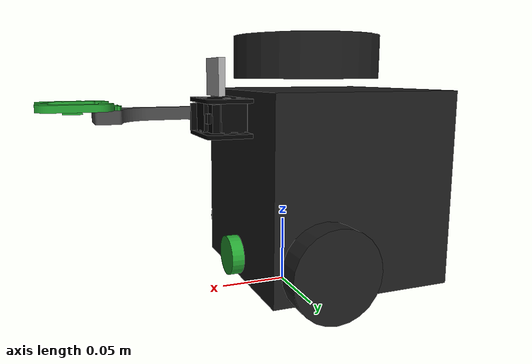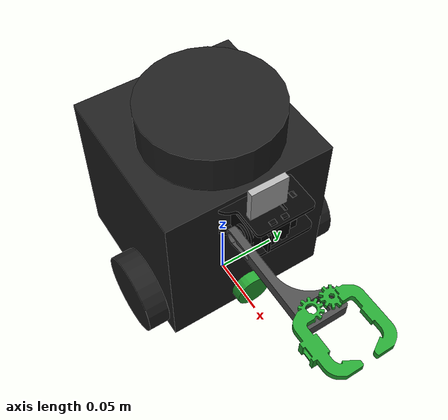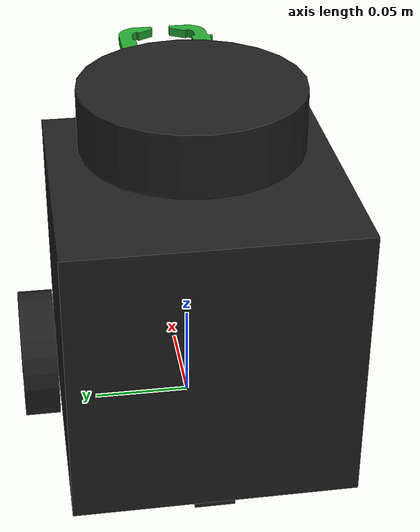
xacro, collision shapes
<?xml version="1.0" ?>
<robot name="mybot" xmlns:xacro="http://ros.org/wiki/xacro">
  <xacro:include filename="$(find mybot_description)/urdf/common_properties.xacro"/>
  <xacro:include filename="$(find mybot_description)/urdf/mybot.gazebo.xacro"/>

  <link name="base_footprint"/>

  <joint name="base_joint" type="fixed">
    <parent link="base_footprint"/>
    <child link="base_link"/>
    <origin xyz="0.0 0.0 0.010" rpy="0 0 0"/>
  </joint>

  <link name="base_link">
    <visual>
      <origin xyz="-0.032 0 0.0" rpy="0 0 0"/>
      <geometry>
        <mesh filename="package://mybot_description/meshes/bases/burger_base.stl" scale="0.001 0.001 0.001"/>
      </geometry>
      <material name="light_black"/>
    </visual>

    <collision>
      <origin xyz="-0.032 0 0.070" rpy="0 0 0"/>
      <geometry>
        <box size="0.140 0.140 0.143"/>
      </geometry>
    </collision>

    <inertial>
      <origin xyz="0 0 0" rpy="0 0 0"/>
      <mass value="8.2573504e-01"/>
      <inertia ixx="2.2124416e-03" ixy="-1.2294101e-05" ixz="3.4938785e-05"
               iyy="2.1193702e-03" iyz="-5.0120904e-06"
               izz="2.0064271e-03" />
    </inertial>
  </link>

  <joint name="wheel_left_joint" type="continuous">
    <parent link="base_link"/>
    <child link="wheel_left_link"/>
    <origin xyz="0.0 0.08 0.023" rpy="-1.57 0 0"/>
    <axis xyz="0 0 1"/>
  </joint>

  <link name="wheel_left_link">
    <visual>
      <origin xyz="0 0 0" rpy="1.57 0 0"/>
      <geometry>
        <mesh filename="package://mybot_description/meshes/wheels/left_tire.stl" scale="0.001 0.001 0.001"/>
      </geometry>
      <material name="dark"/>
    </visual>

    <collision>
      <origin xyz="0 0 0" rpy="0 0 0"/>
      <geometry>
        <cylinder length="0.018" radius="0.033"/>
      </geometry>
    </collision>

    <inertial>
      <origin xyz="0 0 0" />
      <mass value="2.8498940e-02" />
      <inertia ixx="1.1175580e-05" ixy="-4.2369783e-11" ixz="-5.9381719e-09"
               iyy="1.1192413e-05" iyz="-1.4400107e-11"
               izz="2.0712558e-05" />
      </inertial>
  </link>

  <joint name="wheel_right_joint" type="continuous">
    <parent link="base_link"/>
    <child link="wheel_right_link"/>
    <origin xyz="0.0 -0.080 0.023" rpy="-1.57 0 0"/>
    <axis xyz="0 0 1"/>
  </joint>

  <link name="wheel_right_link">
    <visual>
      <origin xyz="0 0 0" rpy="1.57 0 0"/>
      <geometry>
        <mesh filename="package://mybot_description/meshes/wheels/right_tire.stl" scale="0.001 0.001 0.001"/>
      </geometry>
      <material name="dark"/>
    </visual>

    <collision>
      <origin xyz="0 0 0" rpy="0 0 0"/>
      <geometry>
        <cylinder length="0.018" radius="0.033"/>
      </geometry>
    </collision>

    <inertial>
      <origin xyz="0 0 0" />
      <mass value="2.8498940e-02" />
      <inertia ixx="1.1175580e-05" ixy="-4.2369783e-11" ixz="-5.9381719e-09"
               iyy="1.1192413e-05" iyz="-1.4400107e-11"
               izz="2.0712558e-05" />
      </inertial>
  </link>

  <joint name="caster_back_joint" type="fixed">
    <parent link="base_link"/>
    <child link="caster_back_link"/>
    <origin xyz="-0.081 0 -0.004" rpy="-1.57 0 0"/>
  </joint>

  <link name="caster_back_link">
    <collision>
      <origin xyz="0 0.001 0" rpy="0 0 0"/>
      <geometry>
        <box size="0.030 0.009 0.020"/>
      </geometry>
    </collision>

    <inertial>
      <origin xyz="0 0 0" />
      <mass value="0.005" />
      <inertia ixx="0.001" ixy="0.0" ixz="0.0"
               iyy="0.001" iyz="0.0"
               izz="0.001" />
    </inertial>
  </link>

  <joint name="imu_joint" type="fixed">
    <parent link="base_link"/>
    <child link="imu_link"/>
    <origin xyz="-0.032 0 0.068" rpy="0 0 0"/>
  </joint>

  <link name="imu_link"/>

  <joint name="scan_joint" type="fixed">
    <parent link="base_link"/>
    <child link="base_scan"/>
    <origin xyz="-0.032 0 0.172" rpy="0 0 0"/>
  </joint>

  <link name="base_scan">
    <visual>
      <origin xyz="0 0 0.0" rpy="0 0 0"/>
      <geometry>
        <mesh filename="package://mybot_description/meshes/sensors/lds.stl" scale="0.001 0.001 0.001"/>
      </geometry>
      <material name="dark"/>
    </visual>

    <collision>
      <origin xyz="0.015 0 -0.0065" rpy="0 0 0"/>
      <geometry>
        <cylinder length="0.0315" radius="0.055"/>
      </geometry>
    </collision>

    <inertial>
      <mass value="0.114" />
      <origin xyz="0 0 0" />
      <inertia ixx="0.001" ixy="0.0" ixz="0.0"
               iyy="0.001" iyz="0.0"
               izz="0.001" />
    </inertial>
  </link>
<!-- camera turtlebot3 insper-->
  <joint name="camera_joint" type="fixed">
    <origin xyz="0.05 -0.011 0.138" rpy="0 0.0 0"/>
    <parent link="base_link"/>
    <child link="camera_link"/>
  </joint>

  <link name="camera_link">
    <visual>
        <origin xyz="0.005 0.011 0.013" rpy="0 0 0"/>
        <geometry>
            <box size="0.005 0.030 0.027"/>
        </geometry>
    </visual>
    <collision>
      <origin xyz="0.005 0.011 0.013" rpy="0 0 0"/>
      <geometry>
        <box size="0.005 0.030 0.027"/>
      </geometry>
    </collision>
  </link>

  <joint name="camera_rgb_joint" type="fixed">
    <origin xyz="0.003 0.011 0.009" rpy="0 0 0"/>
    <parent link="camera_link"/>
    <child link="camera_rgb_frame"/>
  </joint>
  <link name="camera_rgb_frame"/>

  <joint name="camera_rgb_optical_joint" type="fixed">
    <origin xyz="0 0 0" rpy="-1.57 0 -1.57"/>
    <parent link="camera_rgb_frame"/>
    <child link="camera_rgb_optical_frame"/>
  </joint>
  <link name="camera_rgb_optical_frame"/>

<!-- bumper turtlebot3 insper-->
  <link name="bumper_link">
    <inertial>
        <origin xyz="0.0 0.0 0.0" rpy="0 1.0 0"/>
        <mass value="0.0000000001"/>
        <inertia ixx="0.00000001" ixy="0.00000001" ixz="0.00000001" iyy="0.00000001" iyz="0.00000001" izz="0.00000001"/>
    </inertial>
    <visual>
        <origin xyz="0.0 0.0 0.0" rpy="0.0 1.57 0"/>
        <geometry>
            <cylinder radius="0.015" length="0.015"/>
        </geometry>
      <material name="green"/>
    </visual>
    <collision name="base_collision">
        <origin xyz="0.0 0.0 0.0" rpy="0.0 1.57 0.0"/>
        <geometry>
            <cylinder radius="0.015" length="0.015"/>
        </geometry>
    </collision>
  </link>
  <joint name="bumper_joint" type="fixed">
      <origin xyz="0.04 0.0 0.015" rpy="0.0 0.0 0.0"/>
      <parent link="base_link"/>
      <child link="bumper_link"/>
  </joint>

<!-- garra turtlebot3 insper-->

  <joint name="base_joint_garra" type="fixed">
    <parent link="base_link"/>
    <child link="base_link_garra"/>
    <origin xyz="0.044 0.005 0.108" rpy="0 0 -1.57"/>
  </joint>

  <link name="base_link_garra">
    <inertial>
      <origin rpy="0 0 0" xyz="0.0005 -0.0001 0.002"/>
      <mass value="0.0001"/>
      <inertia ixx="1.9768356736455373e-06" ixy="3.3842609487814834e-07" ixz="3.3087224502121107e-23" iyy="2.1568932661454165e-06" iyz="-2.274746684520826e-23" izz="4.120108098287789e-06"/>
    </inertial>
    <visual>
      <origin rpy="0 0 0" xyz="0 0 0"/>
      <geometry>
        <mesh filename="package://mybot_description/meshes/garra/base_link_garra.dae" scale="0.001 0.001 0.001"/>
      </geometry>
      <gazebo reference="base_link_garra">
    </gazebo>
    </visual>
    <collision>
      <origin rpy="0 0 0" xyz="0 0 0"/>
      <geometry>
        <mesh filename="package://mybot_description/meshes/garra/base_link_garra.dae" scale="0.001 0.001 0.001"/>
      </geometry>
    </collision>
  </link>

  <link name="lat31">
    <inertial>
      <origin rpy="0 0 0" xyz="-0.005014384312211391 -0.0015000010654330244 0.013948367968184407"/>
      <mass value="0.0001"/>
      <inertia ixx="8.662089264671677e-08" ixy="0.0" ixz="1.2947458053521905e-11" iyy="1.3378883884262552e-07" iyz="0.0" izz="4.9622899604909504e-08"/>
    </inertial>
    <visual>
      <origin rpy="0 0 0" xyz="-0.007563 0.0205 -0.001"/>
      <geometry>
        <mesh filename="package://mybot_description/meshes/garra/lat31.dae" scale="0.001 0.001 0.001"/>
      </geometry>
      <gazebo reference="lat31">
    </gazebo>
    </visual>
    <collision>
      <origin rpy="0 0 0" xyz="-0.007563 0.0205 -0.001"/>
      <geometry>
        <mesh filename="package://mybot_description/meshes/garra/lat31.dae" scale="0.001 0.001 0.001"/>
      </geometry>
    </collision>
  </link>

  <link name="lat11">
    <inertial>
      <origin rpy="0 0 0" xyz="-0.00149999999999997 0.004954936394439788 0.013948367968184407"/>
      <mass value="0.0001"/>
      <inertia ixx="1.3378883884262488e-07" ixy="-2.6469779601696886e-23" ixz="0.0" iyy="8.66208926467172e-08" iyz="1.294745805340279e-11" izz="4.962289960490908e-08"/>
    </inertial>
    <visual>
      <origin rpy="0 0 0" xyz="0.016 0.0 -0.001"/>
      <geometry>
        <mesh filename="package://mybot_description/meshes/garra/lat11.dae" scale="0.001 0.001 0.001"/>
      </geometry>
      <gazebo reference="lat11">
    </gazebo>
    </visual>
    <collision>
      <origin rpy="0 0 0" xyz="0.016 0.0 -0.001"/>
      <geometry>
        <mesh filename="package://mybot_description/meshes/garra/lat11.dae" scale="0.001 0.001 0.001"/>
      </geometry>
    </collision>
  </link>

  <link name="lat21">
    <inertial>
      <origin rpy="0 0 0" xyz="0.004954582993387833 0.0014999998509883788 0.013948367968184407"/>
      <mass value="0.0001"/>
      <inertia ixx="8.66208926467172e-08" ixy="-3.970466940254533e-23" ixz="1.294745805356161e-11" iyy="1.3378883884262557e-07" iyz="0.0" izz="4.9622899604909715e-08"/>
    </inertial>
    <visual>
      <origin rpy="0 0 0" xyz="0.002445 -0.0205 -0.001"/>
      <geometry>
        <mesh filename="package://mybot_description/meshes/garra/lat21.dae" scale="0.001 0.001 0.001"/>
      </geometry>
    </visual>
    <collision>
      <origin rpy="0 0 0" xyz="0.002445 -0.0205 -0.001"/>
      <geometry>
        <mesh filename="package://mybot_description/meshes/garra/lat21.dae" scale="0.001 0.001 0.001"/>
      </geometry>
    </collision>
  </link>

  <link name="servo_garra1">
    <inertial>
      <origin rpy="0 0 0" xyz="0.0003331581426503209 0.00010673599128592421 0.010000547183940757"/>
      <mass value="0.001"/>
      <inertia ixx="6.084896121919108e-06" ixy="7.673237329744245e-10" ixz="2.6844653998574326e-10" iyy="5.525444825215397e-06" iyz="-4.006713086347275e-10" izz="9.353516497648977e-06"/>
    </inertial>
    <visual>
      <origin rpy="0 0 0" xyz="-0.003609 5.8e-05 -0.004"/>
      <geometry>
        <mesh filename="package://mybot_description/meshes/garra/servo_garra1.dae" scale="0.001 0.001 0.001"/>
      </geometry>
    </visual>
    <collision>
      <origin rpy="0 0 0" xyz="-0.003609 5.8e-05 -0.004"/>
      <geometry>
        <mesh filename="package://mybot_description/meshes/garra/servo_garra1.dae" scale="0.001 0.001 0.001"/>
      </geometry>
    </collision>
  </link>

  <link name="base_camera1">
    <inertial>
      <origin rpy="0 0 0" xyz="-0.004389339547781822 0.020361286436828687 0.001500000342726699"/>
      <mass value="0.0001"/>
      <inertia ixx="1.9742676232972737e-06" ixy="3.353038926051923e-07" ixz="-1.641126335305207e-21" iyy="2.1544513492515026e-06" iyz="1.1249656330721176e-21" izz="4.115104278945627e-06"/>
    </inertial>
    <visual>
      <origin rpy="0 0 0" xyz="-0.005038 0.0205 -0.0252"/>
      <geometry>
        <mesh filename="package://mybot_description/meshes/garra/base_camera1.dae" scale="0.001 0.001 0.001"/>
      </geometry>
    </visual>
    <collision>
      <origin rpy="0 0 0" xyz="-0.005038 0.0205 -0.0252"/>
      <geometry>
        <mesh filename="package://mybot_description/meshes/garra/base_camera1.dae" scale="0.001 0.001 0.001"/>
      </geometry>
    </collision>
  </link>

  <link name="garra1garrabraco1">
    <inertial>
      <origin rpy="0 0 0" xyz="-0.0037506353032803787 0.05642585700103959 0.0018237999124817317"/>
      <mass value="2.8498940e-03" />
      <inertia ixx="1.1175580e-05" ixy="0.0" ixz="0.0"
               iyy="1.1192413e-05" iyz="0.0"
               izz="2.0712558e-05" />
    </inertial>
    <visual>
      <origin rpy="0 0 0" xyz="-0.027109 -0.009942 -0.014"/>
      <geometry>
        <mesh filename="package://mybot_description/meshes/garra/arm.dae" scale="0.001 0.001 0.001"/>
      </geometry>
    </visual>
    <collision>
      <origin rpy="0 0 0" xyz="-0.027109 -0.009942 -0.014"/>
      <geometry>
        <mesh filename="package://mybot_description/meshes/garra/arm.dae" scale="0.001 0.001 0.001"/>
      </geometry>
    </collision>
  </link>

  <link name="garra1garradireita1">
    <inertial>
      <origin rpy="0 0 0" xyz="0.010935004857829403 0.022288541926215877 0.00183118936157051"/>
      <mass value="0.80e-02" />
      <inertia ixx="1.1175580e-05" ixy="0.0" ixz="0.0"
               iyy="1.1192413e-05" iyz="0.0"
               izz="2.0712558e-05" />
    </inertial>
    <visual>
      <origin rpy="0 0 0" xyz="-0.023009 -0.086931 -0.0205"/>
      <geometry>
        <mesh filename="package://mybot_description/meshes/garra/direita.dae" scale="0.001 0.001 0.001"/>
      </geometry>
      <material name="green"/>
    </visual>
    <collision>
      <origin rpy="0 0 0" xyz="-0.023009 -0.086931 -0.0205"/>
      <geometry>
        <mesh filename="package://mybot_description/meshes/garra/direita.dae" scale="0.001 0.001 0.001"/>
      </geometry>
      </collision>
  </link>

  <link name="garra1garraesquerda1">
    <inertial>
      <origin rpy="0 0 0" xyz="-0.009562998839609715 0.0191706945123718 0.0023786783548043755"/>
      <mass value="0.80e-03" />
      <inertia ixx="1.1175580e-05" ixy="0.0" ixz="0.0"
               iyy="1.1192413e-05" iyz="0.0"
               izz="2.0712558e-05" />
    </inertial>
    <visual>
      <origin rpy="0 0 0" xyz="-0.006109 -0.088614 -0.0205"/>
      <material name="green"/>
      <geometry>
       <mesh filename="package://mybot_description/meshes/garra/esquerda.dae" scale="0.001 0.001 0.001"/>
      </geometry>
    </visual>
    <collision>
      <origin rpy="0 0 0" xyz="-0.006109 -0.088614 -0.0205"/>
      <geometry>
        <mesh filename="package://mybot_description/meshes/garra/esquerda.dae" scale="0.001 0.001 0.001"/>
      </geometry>
    </collision>
  </link>

  <joint name="Rigid1" type="fixed">
    <origin rpy="0 0 0" xyz="0.007563 -0.0205 0.001"/>
    <parent link="base_link_garra"/>
    <child link="lat31"/>
  </joint>

  <joint name="Rigid2" type="fixed">
    <origin rpy="0 0 0" xyz="-0.016 0.0 0.001"/>
    <parent link="base_link_garra"/>
    <child link="lat11"/>
  </joint>

  <joint name="Rigid3" type="fixed">
    <origin rpy="0 0 0" xyz="-0.002445 0.0205 0.001"/>
    <parent link="base_link_garra"/>
    <child link="lat21"/>
  </joint>

  <joint name="Rigid4" type="fixed">
    <origin rpy="0 0 0" xyz="0.003609 -5.8e-05 0.004"/>
    <parent link="base_link_garra"/>
    <child link="servo_garra1"/>
  </joint>

  <joint name="Rigid5" type="fixed">
    <origin rpy="0 0 0" xyz="-0.002525 0.0 0.0242"/>
    <parent link="lat31"/>
    <child link="base_camera1"/>
  </joint>

  <joint name="joint1" type="revolute">
    <origin rpy="0 0 0" xyz="0.0235 0.01 0.01"/>
    <limit effort="1" lower="-1.50" upper="1.5" velocity="0.1"/>
    <parent link="servo_garra1"/>
    <child link="garra1garrabraco1"/>
    <axis xyz="1.0 0.0 0.0"/>
  </joint>

  <joint name="joint2" type="revolute">
    <origin rpy="0 0 0" xyz="-0.0041 0.076989 0.0065"/>
    <limit effort="1" lower="-1" upper="0" velocity="0.1"/>
    <parent link="garra1garrabraco1"/>
    <child link="garra1garradireita1"/>
    <axis xyz="0.0 -0.0 1.0"/>
    <dynamics damping="0.02" friction="0.0" />
  </joint>

  <joint name="joint3" type="revolute">
    <origin rpy="0 0 0" xyz="-0.021 0.078672 0.0065"/>
    <limit effort="1" lower="-1" upper="0" velocity="0.1"/>
    <parent link="garra1garrabraco1"/>
    <child link="garra1garraesquerda1"/>
    <mimic joint="joint2" multiplier="1" offset="0" />
    <axis xyz="0.0 -0.0 -1.0"/>
    <dynamics damping="0.02" friction="0.0" />
  </joint>

</robot>
